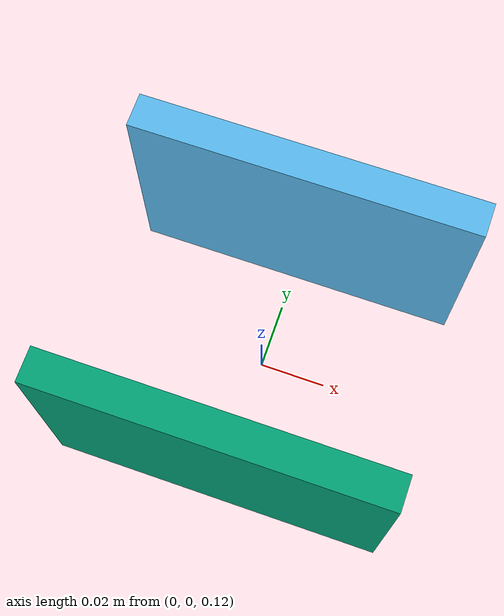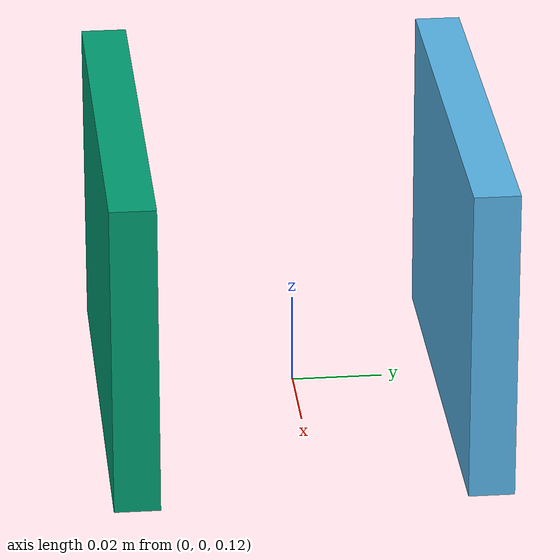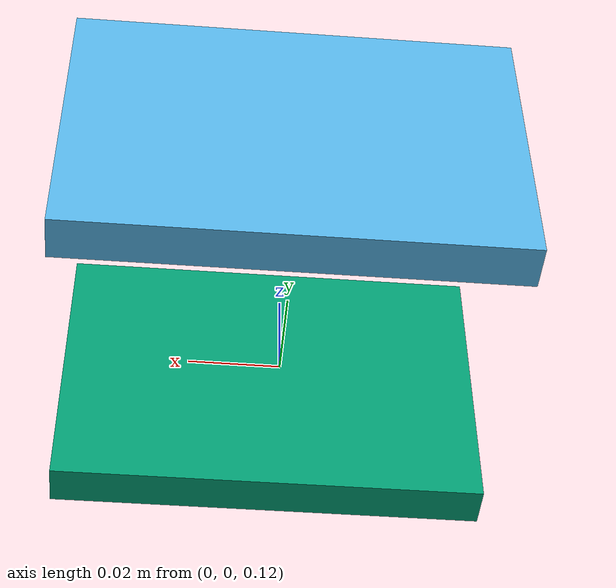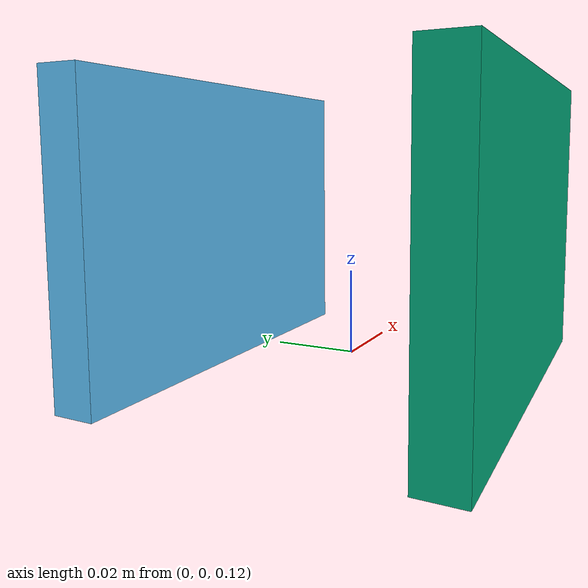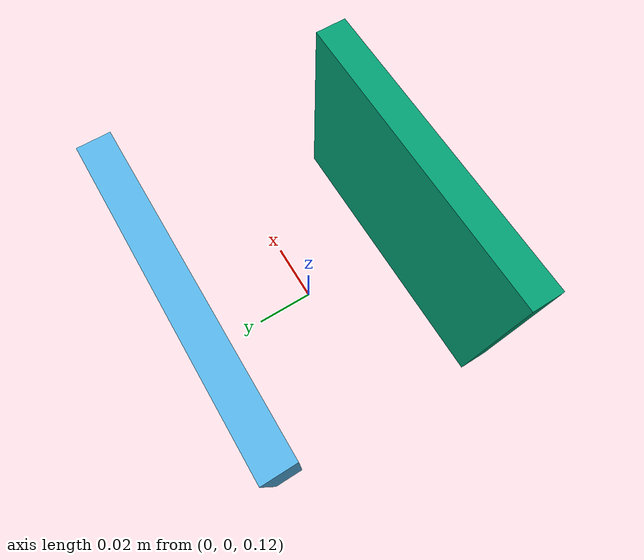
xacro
<?xml version="1.0"?>
<robot name="gripper_placer"
       xmlns:xacro="http://ros.org/wiki/xacro">

  <xacro:arg name="with_gripper_instead_of_forks" default="true" />
  <xacro:arg name="stl_collision" default="false" />
  <xacro:if value="$(arg with_gripper_instead_of_forks)">
    <xacro:property name="tool_offset_z" value="0.11485" />
    <xacro:property name="tool_rotation_z" value="0" />
    <xacro:property name="tool_stl_path" value="package://hydra/models/gripper_placer/meshes/gripper_pad_v2_part.stl" />
    <!--xacro:property name="tool_stl_path" value="package://hydra/models/gripper_placer/meshes/gripper_pad_slot_version.stl" /-->
  </xacro:if>
  <xacro:unless value="$(arg with_gripper_instead_of_forks)">
    <xacro:property name="tool_offset_z" value="0" />
    <xacro:property name="tool_rotation_z" value="${pi/2}" />
    <xacro:property name="tool_stl_path" value="package://hydra/models/gripper_placer/meshes/forks.stl" />
    <!--xacro:property name="tool_stl_path" value="package://hydra/models/gripper_placer/meshes/forks_slot_version.stl" /-->
  </xacro:unless>

  <!-- Switch between EffortJointInterface and PositionJointInterface, still requires change in yaml files -->
  <xacro:arg name="using_position_not_effort" default="false" />
  <xacro:if value="$(arg using_position_not_effort)">
    <xacro:property name="joint_interface" value="PositionJointInterface" />
  </xacro:if>
  <xacro:unless value="$(arg using_position_not_effort)">
    <xacro:property name="joint_interface" value="EffortJointInterface" />
  </xacro:unless>

  <!-- Constants for gripper joint controllers -->
  <xacro:property name="effort_limit" value="100000" />
  <xacro:property name="gripper_max_vel" value="0.0" />  <!-- Default is 0.01 -->
  <xacro:property name="gripper_min_depth" value="0.0001" />  <!-- Default is 0 -->
  <xacro:property name="gripper_kp" value="1e11" />  <!-- Default is 1e12 -->
  <xacro:property name="gripper_kd" value="1e5" />  <!-- Default is 1 -->
  <xacro:property name="gripper_mu1" value="1" />  <!-- Default is 1, range is supposedly 0 to 1 (according to SDF) -->
  <xacro:property name="gripper_mu2" value="1" />  <!-- Default is 1, range is supposedly 0 to 1 (according to SDF) -->
  <xacro:property name="gripper_fdir1" value="0 0 0" />  <!-- Default is 0 0 0 -->

  <!-- Variable for the scale used when importing STL -->
  <xacro:property name="stl_scale" value="0.0254" />

  <xacro:macro name="inertial_values">
    <inertial>
      <mass value="0.1" />
      <inertia ixx="0.01" ixy="0.0" ixz="0.0" iyy="0.02" iyz="0.0" izz="0.02" />
    </inertial>
  </xacro:macro>

  <xacro:macro name="origin_and_geometry">
    <xacro:if value="$(arg stl_collision)">
      <origin xyz="0 0 ${tool_offset_z}" rpy="0 0 ${pi}" />
      <geometry>
	<mesh filename="${tool_stl_path}" scale="${stl_scale} ${stl_scale} ${stl_scale}" />
      </geometry>
    </xacro:if>
    <xacro:unless value="$(arg stl_collision)">
      <origin xyz="0 0 .15" rpy="0 0 ${pi}" />
      <geometry>
	<box size=".10 .01 .07" />
      </geometry>
    </xacro:unless>
  </xacro:macro>

  <!-- Phantom link for center of gripper -->
  <link name="gripper_center" >
    <inertial>
      <mass value="0.01"/>
      <inertia ixx="0.0001" ixy="0.0" ixz="0.0" iyy="0.0001" iyz="0.0" izz="0.0001"/>
    </inertial>
  </link>

  <!-- One side of gripper -->
  <link name="side_p" >
    <visual>
      <xacro:origin_and_geometry />
    </visual>
    <collision>
      <xacro:origin_and_geometry />
    </collision>
    <xacro:inertial_values />
  </link>

  <!-- Second side of gripper -->
  <xacro:if value="$(arg with_gripper_instead_of_forks)">
    <link name="side_d" >
    <visual>
      <xacro:origin_and_geometry />
    </visual>
    <collision>
      <xacro:origin_and_geometry />
    </collision>
    <xacro:inertial_values />
    </link>

    <xacro:unless value="$(arg stl_collision)">
      <link name="fake_block" >
	<collision>
	  <geometry>
	    <box size=".14 .01 .07" />
	  </geometry>
	</collision>
	<xacro:inertial_values />
      </link>
      <joint name="fake_block_joint" type="fixed">
	<origin xyz="0 0.005 .452" rpy="0 0 0" />
	<parent link="side_d" />
	<child link="fake_block" />
      </joint>
    </xacro:unless>

    <!-- Prismatic joint -->
    <joint name="gripper_joint_p" type="prismatic">
      <origin xyz="0 0.038 0" rpy="0 0 0" />
      <axis xyz="0 1 0" />
      <parent link="gripper_center" />
      <child link="side_p" />
      <limit effort="${effort_limit}" lower="-100" upper="100" velocity="0.5"/>
    </joint>

    <joint name="gripper_joint_d" type="prismatic">
      <origin xyz="0 -0.038 0" rpy="0 0 0" />
      <axis xyz="0 1 0" />
      <parent link="gripper_center" />
      <child link="side_d" />
      <limit effort="${effort_limit}" lower="-100" upper="100" velocity="0.5"/>
    </joint>

    <!-- Prismatic joint -->

    <!-- Transmission for ROS control -->
    <transmission name="gripper_joint_transmission_p">
      <type>transmission_interface/SimpleTransmission</type>
      <joint name="gripper_joint_p">
	<hardwareInterface>hardware_interface/${joint_interface}</hardwareInterface>
      </joint>
      <actuator name="gripper_joint_motor_p">
	<hardwareInterface>hardware_interface/${joint_interface}</hardwareInterface>
	<mechanicalReduction>1</mechanicalReduction>
      </actuator>
    </transmission>

    <transmission name="gripper_joint_transmission_d">
      <type>transmission_interface/SimpleTransmission</type>
      <joint name="gripper_joint_d">
	<hardwareInterface>hardware_interface/${joint_interface}</hardwareInterface>
      </joint>
      <actuator name="gripper_joint_motor_d">
	<hardwareInterface>hardware_interface/${joint_interface}</hardwareInterface>
	<mechanicalReduction>1</mechanicalReduction>
      </actuator>
    </transmission>

    <gazebo reference="side_d">
      <kp>${gripper_kp}</kp>
      <kd>${gripper_kd}</kd>
      <maxVel>${gripper_max_vel}</maxVel>  <!-- Default is 0.01 -->
      <minDepth>${gripper_min_depth}</minDepth>
      <mu1>${gripper_mu1}</mu1>
      <mu2>${gripper_mu2}</mu2>
      <fdir1>${gripper_fdir1}</fdir1>
    </gazebo>

  </xacro:if>  <!-- End branch for with_gripper_instead_of_forks -->

  <!-- Gazebo tag for hopefully changing physics engine properties to work -->
  <gazebo reference="side_p">
    <kp>${gripper_kp}</kp>
    <kd>${gripper_kd}</kd>
    <maxVel>${gripper_max_vel}</maxVel>  <!-- Default is 0.01 -->
    <minDepth>${gripper_min_depth}</minDepth>
    <mu1>${gripper_mu1}</mu1>
    <mu2>${gripper_mu2}</mu2>
    <fdir1>${gripper_fdir1}</fdir1>
  </gazebo>

  <xacro:unless value="$(arg with_gripper_instead_of_forks)">
    <!-- Fixed joint for forks -->
    <joint name="gripper_joint_p" type="fixed">
      <origin xyz="0 0 0" rpy="0 0 0" />
      <parent link="gripper_center" />
      <child link="side_p" />
    </joint>
  </xacro:unless>

</robot>
